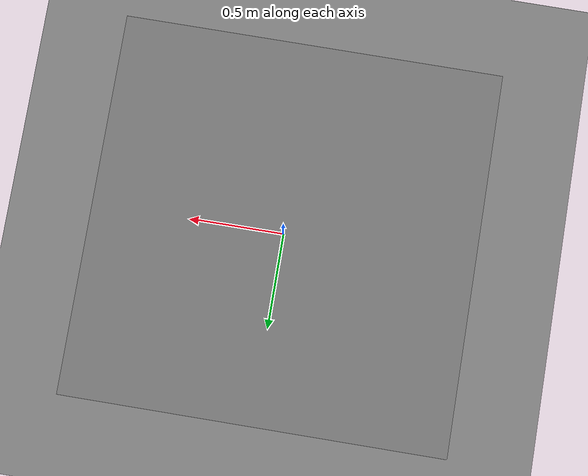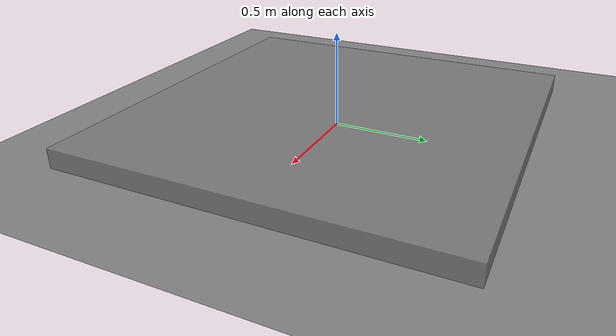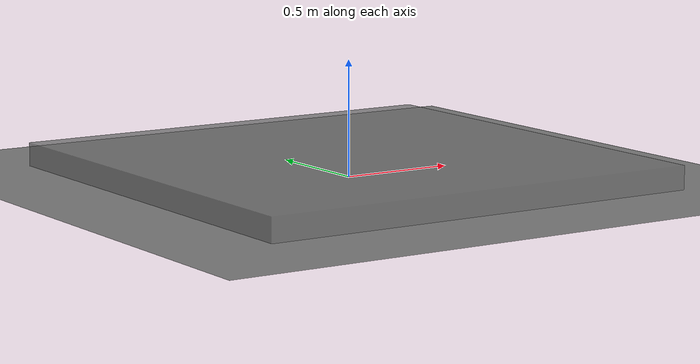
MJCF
<?xml version="1.0" encoding="UTF-8"?>
<mujoco model="glass_slab_simulation">
    <compiler angle="degree"/>
    <option timestep="0.01" gravity="0 0 -9.8"/>

    <asset>
        <material name="glass" rgba="0.5 0.5 0.5 0.8"/>
    </asset>

    <worldbody>
        <geom type="plane" size="10 10 0.1" rgba="0.5 0.5 0.5 1" pos="0 0 0"/>
        <body name="glass_slab" pos="0 0 0">
            <geom type="box" size="1 1 0.1" material="glass"/>
            <!-- Separate 7 DOF Joints -->
            <joint name="joint_x" type="slide" axis="1 0 0"/>
            <joint name="joint_y" type="slide" axis="0 1 0"/>
            <joint name="joint_z" type="slide" axis="0 0 1"/>
            <joint name="joint_rx" type="hinge" axis="1 0 0"/>
            <joint name="joint_ry" type="hinge" axis="0 1 0"/>
            <joint name="joint_rz" type="hinge" axis="0 0 1"/>
        </body>
    </worldbody>
    <actuator>
        <!-- Translational Control -->
        <motor name="motor_x" joint="joint_x" ctrlrange="-1 1" gear="1"/>
        <motor name="motor_y" joint="joint_y" ctrlrange="-1 1" gear="1"/>
        <motor name="motor_z" joint="joint_z" ctrlrange="-1 1" gear="1"/>
        <!-- Rotational Control -->
        <motor name="motor_rx" joint="joint_rx" ctrlrange="-1 1" gear="1"/>
        <motor name="motor_ry" joint="joint_ry" ctrlrange="-1 1" gear="1"/>
        <motor name="motor_rz" joint="joint_rz" ctrlrange="-1 1" gear="1"/>
    </actuator>
    <option gravity="0 0 -9.8"/>
</mujoco>
